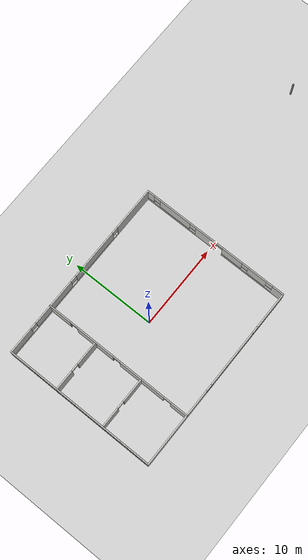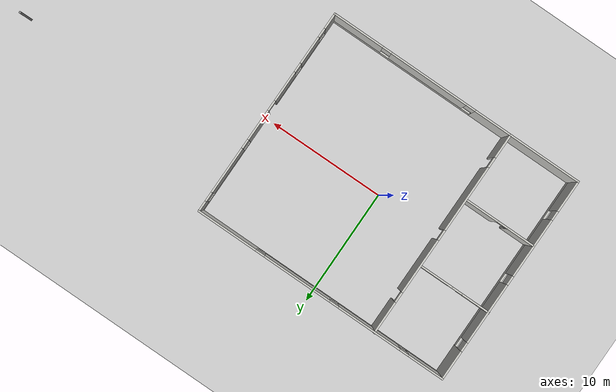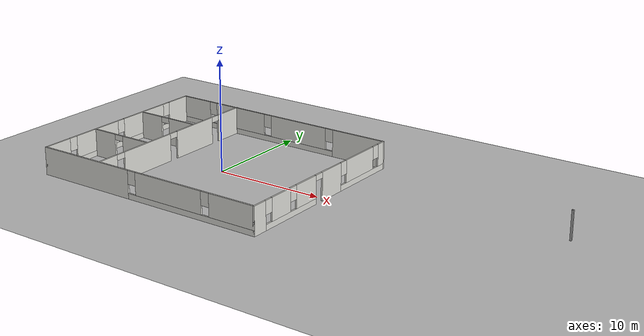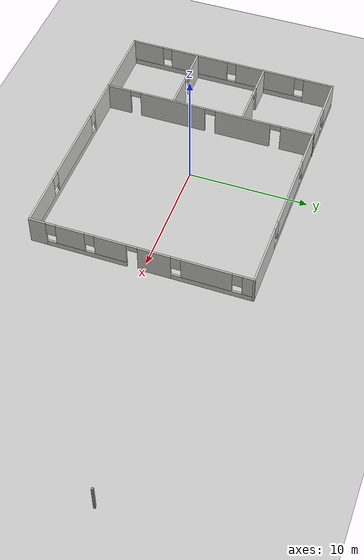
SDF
<sdf version="1.7">
 <world name="default">
  <model name="ground_plane">
   <static>1</static>
   <link name="link">
    <collision name="collision">
     <geometry><plane><normal>0 0 1</normal><size>100 100</size></plane></geometry>
     <surface>
      <contact><collide_bitmask>65535</collide_bitmask></contact>
      <friction><ode><mu>100</mu><mu2>50</mu2></ode></friction>
     </surface>
    </collision>
    <visual name="visual">
     <cast_shadows>0</cast_shadows>
     <geometry><plane><normal>0 0 1</normal><size>100 100</size></plane></geometry>
     <material>
      <script><uri>file://media/materials/scripts/gazebo.material</uri><name>Gazebo/Grey</name></script>
     </material>
    </visual>
   </link>
  </model>
  <model name="new_plan">
   <pose>9.3633 -0.217401 0 0 -0 0</pose>
   <link name="Wall_13">
    <pose>-20.9893 -0.017088 0 0 -0 -1.5708</pose>
    <visual name="Wall_13_Visual_0">
     <pose>-7.82796 0 1.25 0 -0 0</pose>
     <geometry><box><size>2.59408 0.15 2.5</size></box></geometry>
     <material>
      <script><uri>file://media/materials/scripts/gazebo.material</uri><name>Gazebo/CeilingTiled</name></script>
      <ambient>0.435294 0.796078 0.67451 1</ambient>
     </material>
     <meta><layer>0</layer></meta>
    </visual>
    <collision name="Wall_13_Collision_0">
     <geometry><box><size>2.59408 0.15 2.5</size></box></geometry>
     <pose>-7.82796 0 1.25 0 -0 0</pose>
    </collision>
    <visual name="Wall_13_Visual_1">
     <pose>1.29704 0 0.25 0 -0 0</pose>
     <geometry><box><size>15.6559 0.15 0.5</size></box></geometry>
     <material>
      <script><uri>file://media/materials/scripts/gazebo.material</uri><name>Gazebo/CeilingTiled</name></script>
      <ambient>0.435294 0.796078 0.67451 1</ambient>
     </material>
     <meta><layer>0</layer></meta>
    </visual>
    <collision name="Wall_13_Collision_1">
     <geometry><box><size>15.6559 0.15 0.5</size></box></geometry>
     <pose>1.29704 0 0.25 0 -0 0</pose>
    </collision>
    <visual name="Wall_13_Visual_2">
     <pose>-3.07652 0 1.5 0 -0 0</pose>
     <geometry><box><size>5.30879 0.15 2</size></box></geometry>
     <material>
      <script><uri>file://media/materials/scripts/gazebo.material</uri><name>Gazebo/CeilingTiled</name></script>
      <ambient>0.435294 0.796078 0.67451 1</ambient>
     </material>
     <meta><layer>0</layer></meta>
    </visual>
    <collision name="Wall_13_Collision_2">
     <geometry><box><size>5.30879 0.15 2</size></box></geometry>
     <pose>-3.07652 0 1.5 0 -0 0</pose>
    </collision>
    <visual name="Wall_13_Visual_3">
     <pose>2.95136 0 1.5 0 -0 0</pose>
     <geometry><box><size>5.14697 0.15 2</size></box></geometry>
     <material>
      <script><uri>file://media/materials/scripts/gazebo.material</uri><name>Gazebo/CeilingTiled</name></script>
      <ambient>0.435294 0.796078 0.67451 1</ambient>
     </material>
     <meta><layer>0</layer></meta>
    </visual>
    <collision name="Wall_13_Collision_3">
     <geometry><box><size>5.14697 0.15 2</size></box></geometry>
     <pose>2.95136 0 1.5 0 -0 0</pose>
    </collision>
    <visual name="Wall_13_Visual_4">
     <pose>7.72492 0 1.5 0 -0 0</pose>
     <geometry><box><size>2.80016 0.15 2</size></box></geometry>
     <material>
      <script><uri>file://media/materials/scripts/gazebo.material</uri><name>Gazebo/CeilingTiled</name></script>
      <ambient>0.435294 0.796078 0.67451 1</ambient>
     </material>
     <meta><layer>0</layer></meta>
    </visual>
    <collision name="Wall_13_Collision_4">
     <geometry><box><size>2.80016 0.15 2</size></box></geometry>
     <pose>7.72492 0 1.5 0 -0 0</pose>
    </collision>
    <visual name="Wall_13_Visual_5">
     <pose>-6.13092 0 1.9 0 -0 0</pose>
     <geometry><box><size>0.8 0.15 1.2</size></box></geometry>
     <material>
      <script><uri>file://media/materials/scripts/gazebo.material</uri><name>Gazebo/CeilingTiled</name></script>
      <ambient>0.435294 0.796078 0.67451 1</ambient>
     </material>
     <meta><layer>0</layer></meta>
    </visual>
    <collision name="Wall_13_Collision_5">
     <geometry><box><size>0.8 0.15 1.2</size></box></geometry>
     <pose>-6.13092 0 1.9 0 -0 0</pose>
    </collision>
    <visual name="Wall_13_Visual_6">
     <pose>-0.022126 0 1.9 0 -0 0</pose>
     <geometry><box><size>0.8 0.15 1.2</size></box></geometry>
     <material>
      <script><uri>file://media/materials/scripts/gazebo.material</uri><name>Gazebo/CeilingTiled</name></script>
      <ambient>0.435294 0.796078 0.67451 1</ambient>
     </material>
     <meta><layer>0</layer></meta>
    </visual>
    <collision name="Wall_13_Collision_6">
     <geometry><box><size>0.8 0.15 1.2</size></box></geometry>
     <pose>-0.022126 0 1.9 0 -0 0</pose>
    </collision>
    <visual name="Wall_13_Visual_7">
     <pose>5.92484 0 1.9 0 -0 0</pose>
     <geometry><box><size>0.8 0.15 1.2</size></box></geometry>
     <material>
      <script><uri>file://media/materials/scripts/gazebo.material</uri><name>Gazebo/CeilingTiled</name></script>
      <ambient>0.435294 0.796078 0.67451 1</ambient>
     </material>
     <meta><layer>0</layer></meta>
    </visual>
    <collision name="Wall_13_Collision_7">
     <geometry><box><size>0.8 0.15 1.2</size></box></geometry>
     <pose>5.92484 0 1.9 0 -0 0</pose>
    </collision>
   </link>
   <link name="Wall_14">
    <pose>-9.81434 -9.06709 0 0 -0 0</pose>
    <visual name="Wall_14_Visual_0">
     <pose>-6.487 0 1.25 0 -0 0</pose>
     <geometry><box><size>9.52601 0.15 2.5</size></box></geometry>
     <material>
      <script><uri>file://media/materials/scripts/gazebo.material</uri><name>Gazebo/CeilingTiled</name></script>
      <ambient>0.996078 0.47451 0.0196078 1</ambient>
     </material>
     <meta><layer>0</layer></meta>
    </visual>
    <collision name="Wall_14_Collision_0">
     <geometry><box><size>9.52601 0.15 2.5</size></box></geometry>
     <pose>-6.487 0 1.25 0 -0 0</pose>
    </collision>
    <visual name="Wall_14_Visual_1">
     <pose>4.763 0 0.25 0 -0 0</pose>
     <geometry><box><size>12.974 0.15 0.5</size></box></geometry>
     <material>
      <script><uri>file://media/materials/scripts/gazebo.material</uri><name>Gazebo/CeilingTiled</name></script>
      <ambient>0.996078 0.47451 0.0196078 1</ambient>
     </material>
     <meta><layer>0</layer></meta>
    </visual>
    <collision name="Wall_14_Collision_1">
     <geometry><box><size>12.974 0.15 0.5</size></box></geometry>
     <pose>4.763 0 0.25 0 -0 0</pose>
    </collision>
    <visual name="Wall_14_Visual_2">
     <pose>2.51929 0 1.5 0 -0 0</pose>
     <geometry><box><size>6.88656 0.15 2</size></box></geometry>
     <material>
      <script><uri>file://media/materials/scripts/gazebo.material</uri><name>Gazebo/CeilingTiled</name></script>
      <ambient>0.996078 0.47451 0.0196078 1</ambient>
     </material>
     <meta><layer>0</layer></meta>
    </visual>
    <collision name="Wall_14_Collision_2">
     <geometry><box><size>6.88656 0.15 2</size></box></geometry>
     <pose>2.51929 0 1.5 0 -0 0</pose>
    </collision>
    <visual name="Wall_14_Visual_3">
     <pose>9.00628 0 1.5 0 -0 0</pose>
     <geometry><box><size>4.48743 0.15 2</size></box></geometry>
     <material>
      <script><uri>file://media/materials/scripts/gazebo.material</uri><name>Gazebo/CeilingTiled</name></script>
      <ambient>0.996078 0.47451 0.0196078 1</ambient>
     </material>
     <meta><layer>0</layer></meta>
    </visual>
    <collision name="Wall_14_Collision_3">
     <geometry><box><size>4.48743 0.15 2</size></box></geometry>
     <pose>9.00628 0 1.5 0 -0 0</pose>
    </collision>
    <visual name="Wall_14_Visual_4">
     <pose>-1.32399 0 1.9 0 -0 0</pose>
     <geometry><box><size>0.8 0.15 1.2</size></box></geometry>
     <material>
      <script><uri>file://media/materials/scripts/gazebo.material</uri><name>Gazebo/CeilingTiled</name></script>
      <ambient>0.996078 0.47451 0.0196078 1</ambient>
     </material>
     <meta><layer>0</layer></meta>
    </visual>
    <collision name="Wall_14_Collision_4">
     <geometry><box><size>0.8 0.15 1.2</size></box></geometry>
     <pose>-1.32399 0 1.9 0 -0 0</pose>
    </collision>
    <visual name="Wall_14_Visual_5">
     <pose>6.36257 0 1.9 0 -0 0</pose>
     <geometry><box><size>0.8 0.15 1.2</size></box></geometry>
     <material>
      <script><uri>file://media/materials/scripts/gazebo.material</uri><name>Gazebo/CeilingTiled</name></script>
      <ambient>0.996078 0.47451 0.0196078 1</ambient>
     </material>
     <meta><layer>0</layer></meta>
    </visual>
    <collision name="Wall_14_Collision_5">
     <geometry><box><size>0.8 0.15 1.2</size></box></geometry>
     <pose>6.36257 0 1.9 0 -0 0</pose>
    </collision>
   </link>
   <link name="Wall_15">
    <pose>1.36065 -0.017088 0 0 -0 1.5708</pose>
    <visual name="Wall_15_Visual_0">
     <pose>-8.41267 0 1.25 0 -0 0</pose>
     <geometry><box><size>1.42467 0.15 2.5</size></box></geometry>
     <material>
      <script><uri>file://media/materials/scripts/gazebo.material</uri><name>Gazebo/CeilingTiled</name></script>
      <ambient>0.435294 0.796078 0.67451 1</ambient>
     </material>
     <meta><layer>0</layer></meta>
    </visual>
    <collision name="Wall_15_Collision_0">
     <geometry><box><size>1.42467 0.15 2.5</size></box></geometry>
     <pose>-8.41267 0 1.25 0 -0 0</pose>
    </collision>
    <visual name="Wall_15_Visual_1">
     <pose>1.15966 0 1.25 0 -0 0</pose>
     <geometry><box><size>2.66963 0.15 2.5</size></box></geometry>
     <material>
      <script><uri>file://media/materials/scripts/gazebo.material</uri><name>Gazebo/CeilingTiled</name></script>
      <ambient>0.435294 0.796078 0.67451 1</ambient>
     </material>
     <meta><layer>0</layer></meta>
    </visual>
    <collision name="Wall_15_Collision_1">
     <geometry><box><size>2.66963 0.15 2.5</size></box></geometry>
     <pose>1.15966 0 1.25 0 -0 0</pose>
    </collision>
    <visual name="Wall_15_Visual_2">
     <pose>-4.38775 0 0.25 0 -0 0</pose>
     <geometry><box><size>6.62517 0.15 0.5</size></box></geometry>
     <material>
      <script><uri>file://media/materials/scripts/gazebo.material</uri><name>Gazebo/CeilingTiled</name></script>
      <ambient>0.435294 0.796078 0.67451 1</ambient>
     </material>
     <meta><layer>0</layer></meta>
    </visual>
    <collision name="Wall_15_Collision_2">
     <geometry><box><size>6.62517 0.15 0.5</size></box></geometry>
     <pose>-4.38775 0 0.25 0 -0 0</pose>
    </collision>
    <visual name="Wall_15_Visual_3">
     <pose>5.80974 0 0.25 0 -0 0</pose>
     <geometry><box><size>6.63053 0.15 0.5</size></box></geometry>
     <material>
      <script><uri>file://media/materials/scripts/gazebo.material</uri><name>Gazebo/CeilingTiled</name></script>
      <ambient>0.435294 0.796078 0.67451 1</ambient>
     </material>
     <meta><layer>0</layer></meta>
    </visual>
    <collision name="Wall_15_Collision_3">
     <geometry><box><size>6.63053 0.15 0.5</size></box></geometry>
     <pose>5.80974 0 0.25 0 -0 0</pose>
    </collision>
    <visual name="Wall_15_Visual_4">
     <pose>-5.70234 0 1.5 0 -0 0</pose>
     <geometry><box><size>2.39599 0.15 2</size></box></geometry>
     <material>
      <script><uri>file://media/materials/scripts/gazebo.material</uri><name>Gazebo/CeilingTiled</name></script>
      <ambient>0.435294 0.796078 0.67451 1</ambient>
     </material>
     <meta><layer>0</layer></meta>
    </visual>
    <collision name="Wall_15_Collision_4">
     <geometry><box><size>2.39599 0.15 2</size></box></geometry>
     <pose>-5.70234 0 1.5 0 -0 0</pose>
    </collision>
    <visual name="Wall_15_Visual_5">
     <pose>-2.38975 0 1.5 0 -0 0</pose>
     <geometry><box><size>2.62918 0.15 2</size></box></geometry>
     <material>
      <script><uri>file://media/materials/scripts/gazebo.material</uri><name>Gazebo/CeilingTiled</name></script>
      <ambient>0.435294 0.796078 0.67451 1</ambient>
     </material>
     <meta><layer>0</layer></meta>
    </visual>
    <collision name="Wall_15_Collision_5">
     <geometry><box><size>2.62918 0.15 2</size></box></geometry>
     <pose>-2.38975 0 1.5 0 -0 0</pose>
    </collision>
    <visual name="Wall_15_Visual_6">
     <pose>-2.38975 0 1.5 0 -0 0</pose>
     <geometry><box><size>2.62918 0.15 2</size></box></geometry>
     <material>
      <script><uri>file://media/materials/scripts/gazebo.material</uri><name>Gazebo/CeilingTiled</name></script>
      <ambient>0.435294 0.796078 0.67451 1</ambient>
     </material>
     <meta><layer>0</layer></meta>
    </visual>
    <collision name="Wall_15_Collision_6">
     <geometry><box><size>2.62918 0.15 2</size></box></geometry>
     <pose>-2.38975 0 1.5 0 -0 0</pose>
    </collision>
    <visual name="Wall_15_Visual_7">
     <pose>5.32181 0 1.5 0 -0 0</pose>
     <geometry><box><size>4.05467 0.15 2</size></box></geometry>
     <material>
      <script><uri>file://media/materials/scripts/gazebo.material</uri><name>Gazebo/CeilingTiled</name></script>
      <ambient>0.435294 0.796078 0.67451 1</ambient>
     </material>
     <meta><layer>0</layer></meta>
    </visual>
    <collision name="Wall_15_Collision_7">
     <geometry><box><size>4.05467 0.15 2</size></box></geometry>
     <pose>5.32181 0 1.5 0 -0 0</pose>
    </collision>
    <visual name="Wall_15_Visual_8">
     <pose>8.63707 0 1.5 0 -0 0</pose>
     <geometry><box><size>0.975858 0.15 2</size></box></geometry>
     <material>
      <script><uri>file://media/materials/scripts/gazebo.material</uri><name>Gazebo/CeilingTiled</name></script>
      <ambient>0.435294 0.796078 0.67451 1</ambient>
     </material>
     <meta><layer>0</layer></meta>
    </visual>
    <collision name="Wall_15_Collision_8">
     <geometry><box><size>0.975858 0.15 2</size></box></geometry>
     <pose>8.63707 0 1.5 0 -0 0</pose>
    </collision>
    <visual name="Wall_15_Visual_9">
     <pose>-7.30033 0 1.9 0 -0 0</pose>
     <geometry><box><size>0.8 0.15 1.2</size></box></geometry>
     <material>
      <script><uri>file://media/materials/scripts/gazebo.material</uri><name>Gazebo/CeilingTiled</name></script>
      <ambient>0.435294 0.796078 0.67451 1</ambient>
     </material>
     <meta><layer>0</layer></meta>
    </visual>
    <collision name="Wall_15_Collision_9">
     <geometry><box><size>0.8 0.15 1.2</size></box></geometry>
     <pose>-7.30033 0 1.9 0 -0 0</pose>
    </collision>
    <visual name="Wall_15_Visual_10">
     <pose>2.89447 0 1.9 0 -0 0</pose>
     <geometry><box><size>0.8 0.15 1.2</size></box></geometry>
     <material>
      <script><uri>file://media/materials/scripts/gazebo.material</uri><name>Gazebo/CeilingTiled</name></script>
      <ambient>0.435294 0.796078 0.67451 1</ambient>
     </material>
     <meta><layer>0</layer></meta>
    </visual>
    <collision name="Wall_15_Collision_10">
     <geometry><box><size>0.8 0.15 1.2</size></box></geometry>
     <pose>2.89447 0 1.9 0 -0 0</pose>
    </collision>
    <visual name="Wall_15_Visual_11">
     <pose>-4.10434 0 1.9 0 -0 0</pose>
     <geometry><box><size>0.8 0.15 1.2</size></box></geometry>
     <material>
      <script><uri>file://media/materials/scripts/gazebo.material</uri><name>Gazebo/CeilingTiled</name></script>
      <ambient>0.435294 0.796078 0.67451 1</ambient>
     </material>
     <meta><layer>0</layer></meta>
    </visual>
    <collision name="Wall_15_Collision_11">
     <geometry><box><size>0.8 0.15 1.2</size></box></geometry>
     <pose>-4.10434 0 1.9 0 -0 0</pose>
    </collision>
    <visual name="Wall_15_Visual_12">
     <pose>7.74914 0 1.9 0 -0 0</pose>
     <geometry><box><size>0.8 0.15 1.2</size></box></geometry>
     <material>
      <script><uri>file://media/materials/scripts/gazebo.material</uri><name>Gazebo/CeilingTiled</name></script>
      <ambient>0.435294 0.796078 0.67451 1</ambient>
     </material>
     <meta><layer>0</layer></meta>
    </visual>
    <collision name="Wall_15_Collision_12">
     <geometry><box><size>0.8 0.15 1.2</size></box></geometry>
     <pose>7.74914 0 1.9 0 -0 0</pose>
    </collision>
    <visual name="Wall_15_Visual_13">
     <pose>-0.625163 0 2.25 0 -0 0</pose>
     <geometry><box><size>0.9 0.15 0.5</size></box></geometry>
     <material>
      <script><uri>file://media/materials/scripts/gazebo.material</uri><name>Gazebo/CeilingTiled</name></script>
      <ambient>0.435294 0.796078 0.67451 1</ambient>
     </material>
     <meta><layer>0</layer></meta>
    </visual>
    <collision name="Wall_15_Collision_13">
     <geometry><box><size>0.9 0.15 0.5</size></box></geometry>
     <pose>-0.625163 0 2.25 0 -0 0</pose>
    </collision>
    <visual name="Wall_15_Visual_14">
     <pose>-0.625163 0 2.25 0 -0 0</pose>
     <geometry><box><size>0.9 0.15 0.5</size></box></geometry>
     <material>
      <script><uri>file://media/materials/scripts/gazebo.material</uri><name>Gazebo/CeilingTiled</name></script>
      <ambient>0.435294 0.796078 0.67451 1</ambient>
     </material>
     <meta><layer>0</layer></meta>
    </visual>
    <collision name="Wall_15_Collision_14">
     <geometry><box><size>0.9 0.15 0.5</size></box></geometry>
     <pose>-0.625163 0 2.25 0 -0 0</pose>
    </collision>
   </link>
   <link name="Wall_16">
    <pose>-9.81434 9.03291 0 0 -0 3.14159</pose>
    <visual name="Wall_16_Visual_0">
     <pose>-8.60173 0 1.25 0 -0 0</pose>
     <geometry><box><size>5.29654 0.15 2.5</size></box></geometry>
     <material>
      <script><uri>file://media/materials/scripts/gazebo.material</uri><name>Gazebo/CeilingTiled</name></script>
      <ambient>0.996078 0.47451 0.0196078 1</ambient>
     </material>
     <meta><layer>0</layer></meta>
    </visual>
    <collision name="Wall_16_Collision_0">
     <geometry><box><size>5.29654 0.15 2.5</size></box></geometry>
     <pose>-8.60173 0 1.25 0 -0 0</pose>
    </collision>
    <visual name="Wall_16_Visual_1">
     <pose>2.64827 0 0.25 0 -0 0</pose>
     <geometry><box><size>17.2035 0.15 0.5</size></box></geometry>
     <material>
      <script><uri>file://media/materials/scripts/gazebo.material</uri><name>Gazebo/CeilingTiled</name></script>
      <ambient>0.996078 0.47451 0.0196078 1</ambient>
     </material>
     <meta><layer>0</layer></meta>
    </visual>
    <collision name="Wall_16_Collision_1">
     <geometry><box><size>17.2035 0.15 0.5</size></box></geometry>
     <pose>2.64827 0 0.25 0 -0 0</pose>
    </collision>
    <visual name="Wall_16_Visual_2">
     <pose>-2.15519 0 1.5 0 -0 0</pose>
     <geometry><box><size>5.99654 0.15 2</size></box></geometry>
     <material>
      <script><uri>file://media/materials/scripts/gazebo.material</uri><name>Gazebo/CeilingTiled</name></script>
      <ambient>0.996078 0.47451 0.0196078 1</ambient>
     </material>
     <meta><layer>0</layer></meta>
    </visual>
    <collision name="Wall_16_Collision_2">
     <geometry><box><size>5.99654 0.15 2</size></box></geometry>
     <pose>-2.15519 0 1.5 0 -0 0</pose>
    </collision>
    <visual name="Wall_16_Visual_3">
     <pose>4.4593 0 1.5 0 -0 0</pose>
     <geometry><box><size>5.63244 0.15 2</size></box></geometry>
     <material>
      <script><uri>file://media/materials/scripts/gazebo.material</uri><name>Gazebo/CeilingTiled</name></script>
      <ambient>0.996078 0.47451 0.0196078 1</ambient>
     </material>
     <meta><layer>0</layer></meta>
    </visual>
    <collision name="Wall_16_Collision_3">
     <geometry><box><size>5.63244 0.15 2</size></box></geometry>
     <pose>4.4593 0 1.5 0 -0 0</pose>
    </collision>
    <visual name="Wall_16_Visual_4">
     <pose>9.66276 0 1.5 0 -0 0</pose>
     <geometry><box><size>3.17448 0.15 2</size></box></geometry>
     <material>
      <script><uri>file://media/materials/scripts/gazebo.material</uri><name>Gazebo/CeilingTiled</name></script>
      <ambient>0.996078 0.47451 0.0196078 1</ambient>
     </material>
     <meta><layer>0</layer></meta>
    </visual>
    <collision name="Wall_16_Collision_4">
     <geometry><box><size>3.17448 0.15 2</size></box></geometry>
     <pose>9.66276 0 1.5 0 -0 0</pose>
    </collision>
    <visual name="Wall_16_Visual_5">
     <pose>-5.55346 0 1.9 0 -0 0</pose>
     <geometry><box><size>0.8 0.15 1.2</size></box></geometry>
     <material>
      <script><uri>file://media/materials/scripts/gazebo.material</uri><name>Gazebo/CeilingTiled</name></script>
      <ambient>0.996078 0.47451 0.0196078 1</ambient>
     </material>
     <meta><layer>0</layer></meta>
    </visual>
    <collision name="Wall_16_Collision_5">
     <geometry><box><size>0.8 0.15 1.2</size></box></geometry>
     <pose>-5.55346 0 1.9 0 -0 0</pose>
    </collision>
    <visual name="Wall_16_Visual_6">
     <pose>1.24308 0 1.9 0 -0 0</pose>
     <geometry><box><size>0.8 0.15 1.2</size></box></geometry>
     <material>
      <script><uri>file://media/materials/scripts/gazebo.material</uri><name>Gazebo/CeilingTiled</name></script>
      <ambient>0.996078 0.47451 0.0196078 1</ambient>
     </material>
     <meta><layer>0</layer></meta>
    </visual>
    <collision name="Wall_16_Collision_6">
     <geometry><box><size>0.8 0.15 1.2</size></box></geometry>
     <pose>1.24308 0 1.9 0 -0 0</pose>
    </collision>
    <visual name="Wall_16_Visual_7">
     <pose>7.67552 0 1.9 0 -0 0</pose>
     <geometry><box><size>0.8 0.15 1.2</size></box></geometry>
     <material>
      <script><uri>file://media/materials/scripts/gazebo.material</uri><name>Gazebo/CeilingTiled</name></script>
      <ambient>0.996078 0.47451 0.0196078 1</ambient>
     </material>
     <meta><layer>0</layer></meta>
    </visual>
    <collision name="Wall_16_Collision_7">
     <geometry><box><size>0.8 0.15 1.2</size></box></geometry>
     <pose>7.67552 0 1.9 0 -0 0</pose>
    </collision>
   </link>
   <link name="Wall_24">
    <collision name="Wall_24_Collision">
     <geometry><box><size>0.16 0.15 2.5</size></box></geometry>
     <pose>0 0 1.25 0 -0 0</pose>
    </collision>
    <visual name="Wall_24_Visual">
     <pose>0 0 1.25 0 -0 0</pose>
     <geometry><box><size>0.16 0.15 2.5</size></box></geometry>
     <material>
      <script><uri>file://media/materials/scripts/gazebo.material</uri><name>Gazebo/Grey</name></script>
      <ambient>0 0 0 1</ambient>
     </material>
     <meta><layer>0</layer></meta>
    </visual>
    <pose>21.0045 4.34442 0 0 -0 0</pose>
   </link>
   <link name="Wall_29">
    <pose>-14.7793 0.017087 0 0 -0 -1.5708</pose>
    <visual name="Wall_29_Visual_0">
     <pose>-7.69428 0 1.25 0 -0 0</pose>
     <geometry><box><size>2.86145 0.15 2.5</size></box></geometry>
     <material>
      <script><uri>file://media/materials/scripts/gazebo.material</uri><name>Gazebo/CeilingTiled</name></script>
      <ambient>1 0.764706 0.305882 1</ambient>
     </material>
     <meta><layer>0</layer></meta>
    </visual>
    <collision name="Wall_29_Collision_0">
     <geometry><box><size>2.86145 0.15 2.5</size></box></geometry>
     <pose>-7.69428 0 1.25 0 -0 0</pose>
    </collision>
    <visual name="Wall_29_Visual_1">
     <pose>-2.96144 0 1.25 0 -0 0</pose>
     <geometry><box><size>4.80424 0.15 2.5</size></box></geometry>
     <material>
      <script><uri>file://media/materials/scripts/gazebo.material</uri><name>Gazebo/CeilingTiled</name></script>
      <ambient>1 0.764706 0.305882 1</ambient>
     </material>
     <meta><layer>0</layer></meta>
    </visual>
    <collision name="Wall_29_Collision_1">
     <geometry><box><size>4.80424 0.15 2.5</size></box></geometry>
     <pose>-2.96144 0 1.25 0 -0 0</pose>
    </collision>
    <visual name="Wall_29_Visual_2">
     <pose>3.22827 0 1.25 0 -0 0</pose>
     <geometry><box><size>5.77517 0.15 2.5</size></box></geometry>
     <material>
      <script><uri>file://media/materials/scripts/gazebo.material</uri><name>Gazebo/CeilingTiled</name></script>
      <ambient>1 0.764706 0.305882 1</ambient>
     </material>
     <meta><layer>0</layer></meta>
    </visual>
    <collision name="Wall_29_Collision_2">
     <geometry><box><size>5.77517 0.15 2.5</size></box></geometry>
     <pose>3.22827 0 1.25 0 -0 0</pose>
    </collision>
    <visual name="Wall_29_Visual_3">
     <pose>8.07043 0 1.25 0 -0 0</pose>
     <geometry><box><size>2.10915 0.15 2.5</size></box></geometry>
     <material>
      <script><uri>file://media/materials/scripts/gazebo.material</uri><name>Gazebo/CeilingTiled</name></script>
      <ambient>1 0.764706 0.305882 1</ambient>
     </material>
     <meta><layer>0</layer></meta>
    </visual>
    <collision name="Wall_29_Collision_3">
     <geometry><box><size>2.10915 0.15 2.5</size></box></geometry>
     <pose>8.07043 0 1.25 0 -0 0</pose>
    </collision>
    <visual name="Wall_29_Visual_4">
     <pose>-5.81355 0 2.25 0 -0 0</pose>
     <geometry><box><size>0.9 0.15 0.5</size></box></geometry>
     <material>
      <script><uri>file://media/materials/scripts/gazebo.material</uri><name>Gazebo/CeilingTiled</name></script>
      <ambient>1 0.764706 0.305882 1</ambient>
     </material>
     <meta><layer>0</layer></meta>
    </visual>
    <collision name="Wall_29_Collision_4">
     <geometry><box><size>0.9 0.15 0.5</size></box></geometry>
     <pose>-5.81355 0 2.25 0 -0 0</pose>
    </collision>
    <visual name="Wall_29_Visual_5">
     <pose>-0.109317 0 2.25 0 -0 0</pose>
     <geometry><box><size>0.9 0.15 0.5</size></box></geometry>
     <material>
      <script><uri>file://media/materials/scripts/gazebo.material</uri><name>Gazebo/CeilingTiled</name></script>
      <ambient>1 0.764706 0.305882 1</ambient>
     </material>
     <meta><layer>0</layer></meta>
    </visual>
    <collision name="Wall_29_Collision_5">
     <geometry><box><size>0.9 0.15 0.5</size></box></geometry>
     <pose>-0.109317 0 2.25 0 -0 0</pose>
    </collision>
    <visual name="Wall_29_Visual_6">
     <pose>6.56585 0 2.25 0 -0 0</pose>
     <geometry><box><size>0.9 0.15 0.5</size></box></geometry>
     <material>
      <script><uri>file://media/materials/scripts/gazebo.material</uri><name>Gazebo/CeilingTiled</name></script>
      <ambient>1 0.764706 0.305882 1</ambient>
     </material>
     <meta><layer>0</layer></meta>
    </visual>
    <collision name="Wall_29_Collision_6">
     <geometry><box><size>0.9 0.15 0.5</size></box></geometry>
     <pose>6.56585 0 2.25 0 -0 0</pose>
    </collision>
   </link>
   <link name="Wall_32">
    <pose>-17.9595 2.91784 0 0 -0 0</pose>
    <visual name="Wall_32_Visual_0">
     <pose>-1.87633 0 1.25 0 -0 0</pose>
     <geometry><box><size>2.49735 0.15 2.5</size></box></geometry>
     <material>
      <script><uri>file://media/materials/scripts/gazebo.material</uri><name>Gazebo/CeilingTiled</name></script>
      <ambient>0.921569 0.807843 0.615686 1</ambient>
     </material>
     <meta><layer>0</layer></meta>
    </visual>
    <collision name="Wall_32_Collision_0">
     <geometry><box><size>2.49735 0.15 2.5</size></box></geometry>
     <pose>-1.87633 0 1.25 0 -0 0</pose>
    </collision>
    <visual name="Wall_32_Visual_1">
     <pose>1.69867 0 1.25 0 -0 0</pose>
     <geometry><box><size>2.85265 0.15 2.5</size></box></geometry>
     <material>
      <script><uri>file://media/materials/scripts/gazebo.material</uri><name>Gazebo/CeilingTiled</name></script>
      <ambient>0.921569 0.807843 0.615686 1</ambient>
     </material>
     <meta><layer>0</layer></meta>
    </visual>
    <collision name="Wall_32_Collision_1">
     <geometry><box><size>2.85265 0.15 2.5</size></box></geometry>
     <pose>1.69867 0 1.25 0 -0 0</pose>
    </collision>
    <visual name="Wall_32_Visual_2">
     <pose>-0.177654 0 2.25 0 -0 0</pose>
     <geometry><box><size>0.9 0.15 0.5</size></box></geometry>
     <material>
      <script><uri>file://media/materials/scripts/gazebo.material</uri><name>Gazebo/CeilingTiled</name></script>
      <ambient>0.921569 0.807843 0.615686 1</ambient>
     </material>
     <meta><layer>0</layer></meta>
    </visual>
    <collision name="Wall_32_Collision_2">
     <geometry><box><size>0.9 0.15 0.5</size></box></geometry>
     <pose>-0.177654 0 2.25 0 -0 0</pose>
    </collision>
   </link>
   <link name="Wall_35">
    <pose>-17.919 -3.1505 0 0 -0 0</pose>
    <visual name="Wall_35_Visual_0">
     <pose>-1.89655 0 1.25 0 -0 0</pose>
     <geometry><box><size>2.45689 0.15 2.5</size></box></geometry>
     <material>
      <script><uri>file://media/materials/scripts/gazebo.material</uri><name>Gazebo/CeilingTiled</name></script>
      <ambient>0.921569 0.807843 0.615686 1</ambient>
     </material>
     <meta><layer>0</layer></meta>
    </visual>
    <collision name="Wall_35_Collision_0">
     <geometry><box><size>2.45689 0.15 2.5</size></box></geometry>
     <pose>-1.89655 0 1.25 0 -0 0</pose>
    </collision>
    <visual name="Wall_35_Visual_1">
     <pose>1.67844 0 1.25 0 -0 0</pose>
     <geometry><box><size>2.89311 0.15 2.5</size></box></geometry>
     <material>
      <script><uri>file://media/materials/scripts/gazebo.material</uri><name>Gazebo/CeilingTiled</name></script>
      <ambient>0.921569 0.807843 0.615686 1</ambient>
     </material>
     <meta><layer>0</layer></meta>
    </visual>
    <collision name="Wall_35_Collision_1">
     <geometry><box><size>2.89311 0.15 2.5</size></box></geometry>
     <pose>1.67844 0 1.25 0 -0 0</pose>
    </collision>
    <visual name="Wall_35_Visual_2">
     <pose>-0.21811 0 2.25 0 -0 0</pose>
     <geometry><box><size>0.9 0.15 0.5</size></box></geometry>
     <material>
      <script><uri>file://media/materials/scripts/gazebo.material</uri><name>Gazebo/CeilingTiled</name></script>
      <ambient>0.921569 0.807843 0.615686 1</ambient>
     </material>
     <meta><layer>0</layer></meta>
    </visual>
    <collision name="Wall_35_Collision_2">
     <geometry><box><size>0.9 0.15 0.5</size></box></geometry>
     <pose>-0.21811 0 2.25 0 -0 0</pose>
    </collision>
   </link>
   <static>1</static>
  </model>
 </world>
</sdf>
